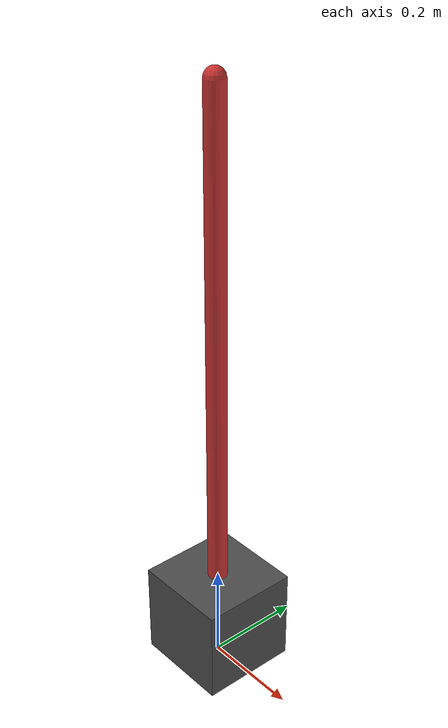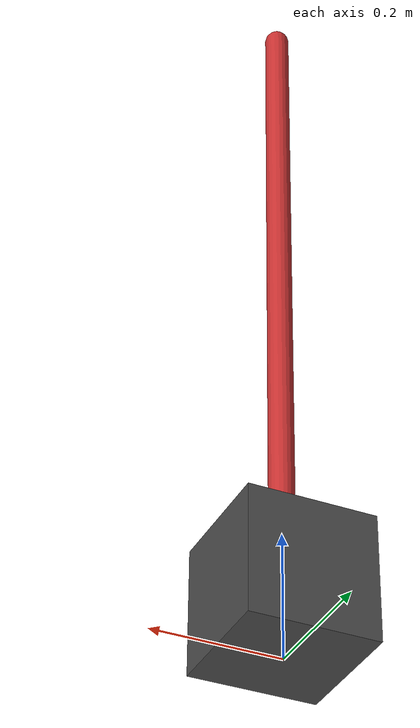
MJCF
<mujoco model="invpend">
    <compiler angle="degree"/>
    <option gravity="0 0 -9.81"/>

    <worldbody>
        <body name="base" pos="0 0 0.1">
            <geom type="box" size="0.1 0.1 0.1" rgba="0.3 0.3 0.3 1"/>

            <body name="pend" pos="0 0 0.1">
                <joint name="hinge" type="hinge" axis="0 1 0" limited="false" damping="0.01"/>
                <geom type="capsule" fromto="0 0 0 0 0 1" size="0.02" rgba="0.8 0.2 0.2 1"/>
                <geom type="capsule" fromto="0 0 0 0 0 1" size="0.02" rgba="0.8 0.2 0.2 1" mass="0.5"/>

            </body>
        </body>
    </worldbody>
</mujoco>
